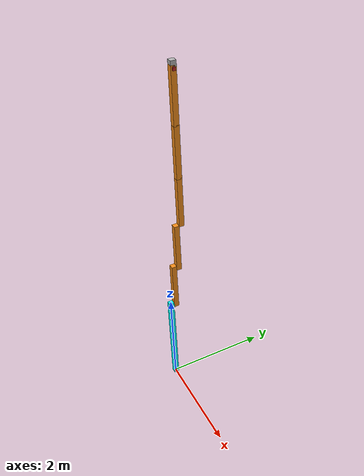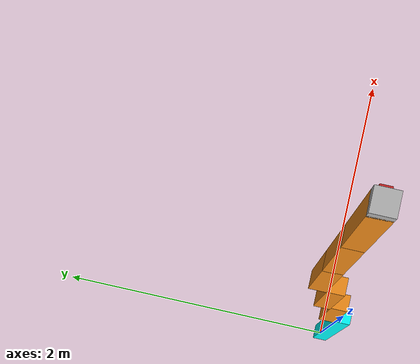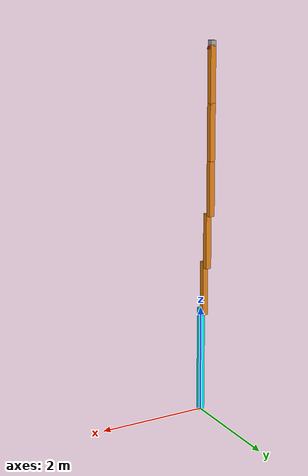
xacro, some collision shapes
<?xml version="1.0"?>
<!-- Revolute-Revolute Manipulator -->
<robot name="rrbot" xmlns:xacro="http://www.ros.org/wiki/xacro">

  <!-- Constants for robot dimensions -->
  <xacro:property name="PI" value="3.1415926535897931"/>
  <xacro:property name="mass" value="1" /> <!-- arbitrary value for mass -->
  <xacro:property name="width" value="0.1" /> <!-- Square dimensions (widthxwidth) of beams -->
  <xacro:property name="height1" value="2" /> <!-- Link 1 -->
  <xacro:property name="height2" value="1" /> <!-- Link 2 -->
  <xacro:property name="height3" value="1" /> <!-- Link 3 -->
  <xacro:property name="height4" value="1" /> <!-- Link 4 -->
  <xacro:property name="height5" value="1" /> <!-- Link 5 -->
  <xacro:property name="height6" value="1" /> <!-- Link 6 -->
  <xacro:property name="camera_link" value="0.05" /> <!-- Size of square 'camera' box -->
  <xacro:property name="axel_offset" value="0.05" /> <!-- Space btw top of beam and the each joint -->

  <!-- Import all Gazebo-customization elements, including Gazebo colors -->
  <xacro:include filename="$(find rrbot_description)/urdf/rrbot.gazebo" />
  <!-- Import Rviz colors -->
  <xacro:include filename="$(find rrbot_description)/urdf/materials.xacro" />

  <!-- Used for fixing robot to Gazebo 'base_link' -->
  <link name="world"/>

  <joint name="fixed" type="fixed">
    <parent link="world"/>
    <child link="link1"/>
  </joint>

  <!-- Base Link -->
  <link name="link1">
    <collision>
      <origin xyz="0 0 ${height1/2}" rpy="0 0 0"/>
      <geometry>
	<box size="${width} ${width} ${height1}"/>
      </geometry>
    </collision>

    <visual>
      <origin xyz="0 0 ${height1/2}" rpy="0 0 0"/>
      <geometry>
	<box size="${width} ${width} ${height1}"/>
      </geometry>
 <material name="Cyan">
          <color rgba="0 1.0 1.0 1.0"/>
       </material>

    </visual>

    <inertial>
      <origin xyz="0 0 ${height1/2}" rpy="0 0 0"/>
      <mass value="${mass}"/>
      <inertia
	  ixx="${mass / 12.0 * (width*width + height1*height1)}" ixy="0.0" ixz="0.0"
	  iyy="${mass / 12.0 * (height1*height1 + width*width)}" iyz="0.0"
	  izz="${mass / 12.0 * (width*width + width*width)}"/>
    </inertial>
  </link>

  <joint name="joint1" type="continuous">
    <parent link="link1"/>
    <child link="link2"/>
    <origin xyz="0 ${width} ${height1 - axel_offset}" rpy="0 0 0"/>
    <axis xyz="0 1 0"/>
    <dynamics damping="0.7"/>
  </joint>

  <!-- Middle Link 1 -->
  <link name="link2">
    <collision>
      <origin xyz="0 0 ${height2/2 - axel_offset}" rpy="0 0 0"/>
      <geometry>
	<box size="${width} ${width} ${height2}"/>
      </geometry>
    </collision>

    <visual>
      <origin xyz="0 0 ${height2/2 - axel_offset}" rpy="0 0 0"/>
      <geometry>
	<box size="${width} ${width} ${height2}"/>
      </geometry>
<material name="orange"/>
    </visual>

    <inertial>
      <origin xyz="0 0 ${height2/2 - axel_offset}" rpy="0 0 0"/>
      <mass value="${mass}"/>
      <inertia
	  ixx="${mass / 12.0 * (width*width + height2*height2)}" ixy="0.0" ixz="0.0"
	  iyy="${mass / 12.0 * (height2*height2 + width*width)}" iyz="0.0"
	  izz="${mass / 12.0 * (width*width + width*width)}"/>
    </inertial>
  </link>

  <joint name="joint2" type="continuous">
    <parent link="link2"/>
    <child link="link3"/>
    <origin xyz="0 ${width} ${height2 - axel_offset*2}" rpy="0 0 0"/>
    <axis xyz="0 1 0"/>
    <dynamics damping="0.7"/>
  </joint>

  <!-- Middle Link 2 -->
  <link name="link3">
    <collision>
      <origin xyz="0 0 ${height3/2 - axel_offset}" rpy="0 0 0"/>
      <geometry>
	<box size="${width} ${width} ${height3}"/>
      </geometry>
    </collision>

    <visual>
      <origin xyz="0 0 ${height3/2 - axel_offset}" rpy="0 0 0"/>
      <geometry>
	<box size="${width} ${width} ${height3}"/>
      </geometry>
      <material name="orange"/>
    </visual>

    <inertial>
      <origin xyz="0 0 ${height3/2 - axel_offset}" rpy="0 0 0"/>
      <mass value="${mass}"/>
      <inertia
	  ixx="${mass / 12.0 * (width*width + height3*height3)}" ixy="0.0" ixz="0.0"
	  iyy="${mass / 12.0 * (height3*height3 + width*width)}" iyz="0.0"
	  izz="${mass / 12.0 * (width*width + width*width)}"/>
    </inertial>
  </link>

  <joint name="joint3" type="continuous">
    <axis xyz="0 1 0" />
    <origin xyz="0 ${width} ${height3 - axel_offset/2}" rpy="0 0 0"/>
    <parent link="link3"/>
    <child link="link4"/>
  </joint>

  <!-- Middle Link 3 -->
  <link name="link4">
    <collision>
      <origin xyz="0 0 ${height4/2 - axel_offset}" rpy="0 0 0"/>
      <geometry>
	<box size="${width} ${width} ${height4}"/>
      </geometry>
    </collision>

    <visual>
      <origin xyz="0 0 ${height4/2 - axel_offset}" rpy="0 0 0"/>
      <geometry>
	<box size="${width} ${width} ${height4}"/>
      </geometry>
      <material name="orange"/>
    </visual>

    <inertial>
      <origin xyz="0 0 ${height4/2 - axel_offset}" rpy="0 0 0"/>
      <mass value="${mass}"/>
      <inertia
	  ixx="${mass / 12.0 * (width*width + height4*height4)}" ixy="0.0" ixz="0.0"
	  iyy="${mass / 12.0 * (height4*height4 + width*width)}" iyz="0.0"
	  izz="${mass / 12.0 * (width*width + width*width)}"/>
    </inertial>
  </link>

  <joint name="joint4" type="continuous">
    <axis xyz="0 1 0" />
    <origin xyz="0 0 ${height4 - axel_offset/2}" rpy="0 0 0"/>
    <parent link="link4"/>
    <child link="link5"/>
  </joint>

  <!-- Middle Link 4-->
  <link name="link5">
    <collision>
      <origin xyz="0 0 ${height5/2 - axel_offset}" rpy="0 0 0"/>
      <geometry>
	<box size="${width} ${width} ${height5}"/>
      </geometry>
    </collision>

    <visual>
      <origin xyz="0 0 ${height5/2 - axel_offset}" rpy="0 0 0"/>
      <geometry>
	<box size="${width} ${width} ${height5}"/>
      </geometry>
      <material name="orange"/>
    </visual>

    <inertial>
      <origin xyz="0 0 ${height5/2 - axel_offset}" rpy="0 0 0"/>
      <mass value="${mass}"/>
      <inertia
	  ixx="${mass / 12.0 * (width*width + height5*height5)}" ixy="0.0" ixz="0.0"
	  iyy="${mass / 12.0 * (height5*height5 + width*width)}" iyz="0.0"
	  izz="${mass / 12.0 * (width*width + width*width)}"/>
    </inertial>
  </link>

  <joint name="joint5" type="continuous">
    <axis xyz="0 1 0" />
    <origin xyz="0 0 ${height5 - axel_offset/2}" rpy="0 0 0"/>
    <parent link="link5"/>
    <child link="link6"/>
  </joint>

  <!-- Top Link -->
  <link name="link6">
    <collision>
      <origin xyz="0 0 ${height6/2 - axel_offset}" rpy="0 0 0"/>
      <geometry>
	<box size="${width} ${width} ${height6}"/>
      </geometry>
    </collision>

    <visual>
      <origin xyz="0 0 ${height6/2 - axel_offset}" rpy="0 0 0"/>
      <geometry>
	<box size="${width} ${width} ${height6}"/>
      </geometry>
      <material name="orange"/>
    </visual>

    <inertial>
      <origin xyz="0 0 ${height6/2 - axel_offset}" rpy="0 0 0"/>
      <mass value="${mass}"/>
      <inertia
	  ixx="${mass / 12.0 * (width*width + height6*height6)}" ixy="0.0" ixz="0.0"
	  iyy="${mass / 12.0 * (height6*height6 + width*width)}" iyz="0.0"
	  izz="${mass / 12.0 * (width*width + width*width)}"/>
    </inertial>
  </link>

  <joint name="hokuyo_joint" type="fixed">
    <axis xyz="0 1 0" />
    <origin xyz="0 0 ${height6 - axel_offset/2}" rpy="0 0 0"/>
    <parent link="link6"/>
    <child link="hokuyo_link"/>
  </joint>

  <!-- Hokuyo Laser -->
  <link name="hokuyo_link">
    <collision>
      <origin xyz="0 0 0" rpy="0 0 0"/>
      <geometry>
	<box size="0.1 0.1 0.1"/>
      </geometry>
    </collision>

    <visual>
      <origin xyz="0 0 0" rpy="0 0 0"/>
      <geometry>
        <mesh filename="package://rrbot_description/meshes/hokuyo.dae"/>
      </geometry>
    </visual>

    <inertial>
      <mass value="1e-5" />
      <origin xyz="0 0 0" rpy="0 0 0"/>
      <inertia ixx="1e-6" ixy="0" ixz="0" iyy="1e-6" iyz="0" izz="1e-6" />
    </inertial>
  </link>

  <joint name="camera_joint" type="fixed">
    <axis xyz="0 1 0" />
    <origin xyz="${camera_link} 0 ${height6 - axel_offset*2}" rpy="0 0 0"/>
    <parent link="link6"/>
    <child link="camera_link"/>
  </joint>

  <!-- Camera -->
  <link name="camera_link">
    <collision>
      <origin xyz="0 0 0" rpy="0 0 0"/>
      <geometry>
	<box size="${camera_link} ${camera_link} ${camera_link}"/>
      </geometry>
    </collision>

    <visual>
      <origin xyz="0 0 0" rpy="0 0 0"/>
      <geometry>
	<box size="${camera_link} ${camera_link} ${camera_link}"/>
      </geometry>
      <material name="red"/>
    </visual>

    <inertial>
      <mass value="1e-5" />
      <origin xyz="0 0 0" rpy="0 0 0"/>
      <inertia ixx="1e-6" ixy="0" ixz="0" iyy="1e-6" iyz="0" izz="1e-6" />
    </inertial>
  </link>

  <!-- generate an optical frame http://www.ros.org/reps/rep-0103.html#suffix-frames
      so that ros and opencv can operate on the camera frame correctly -->
  <joint name="camera_optical_joint" type="fixed">
    <!-- these values have to be these values otherwise the gazebo camera image
        won't be aligned properly with the frame it is supposedly originating from -->
    <origin xyz="0 0 0" rpy="${-pi/2} 0 ${-pi/2}"/>
    <parent link="camera_link"/>
    <child link="camera_link_optical"/>
  </joint>

  <link name="camera_link_optical">
  </link>

  <transmission name="tran1">
    <type>transmission_interface/SimpleTransmission</type>
    <joint name="joint1">
      <hardwareInterface>hardware_interface/EffortJointInterface</hardwareInterface>
    </joint>
    <actuator name="motor1">
      <hardwareInterface>hardware_interface/EffortJointInterface</hardwareInterface>
      <mechanicalReduction>1</mechanicalReduction>
    </actuator>
  </transmission>

  <transmission name="tran2">
    <type>transmission_interface/SimpleTransmission</type>
    <joint name="joint2">
      <hardwareInterface>hardware_interface/EffortJointInterface</hardwareInterface>
    </joint>
    <actuator name="motor2">
      <hardwareInterface>hardware_interface/EffortJointInterface</hardwareInterface>
      <mechanicalReduction>1</mechanicalReduction>
    </actuator>
  </transmission>

</robot>
